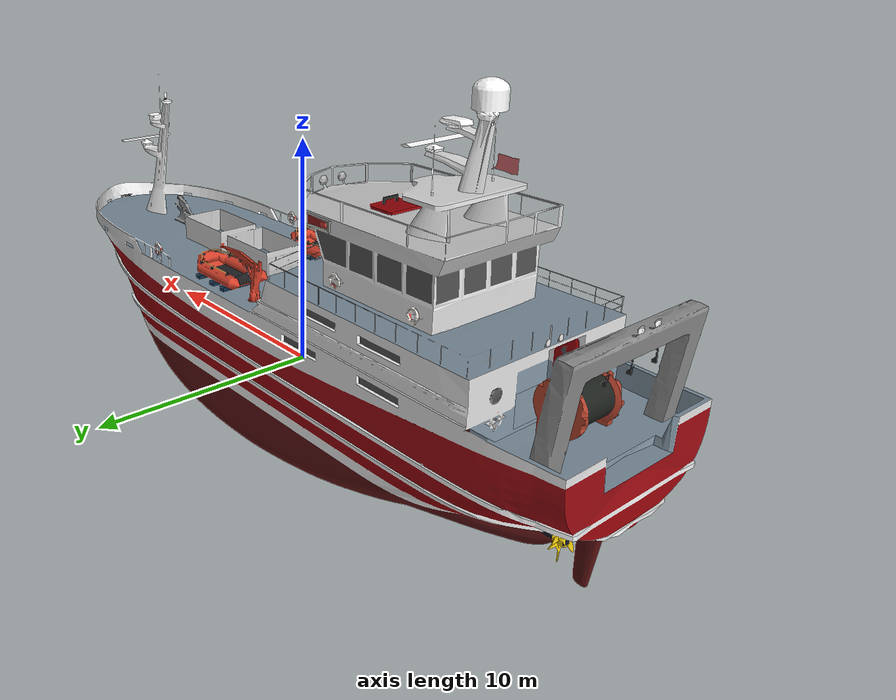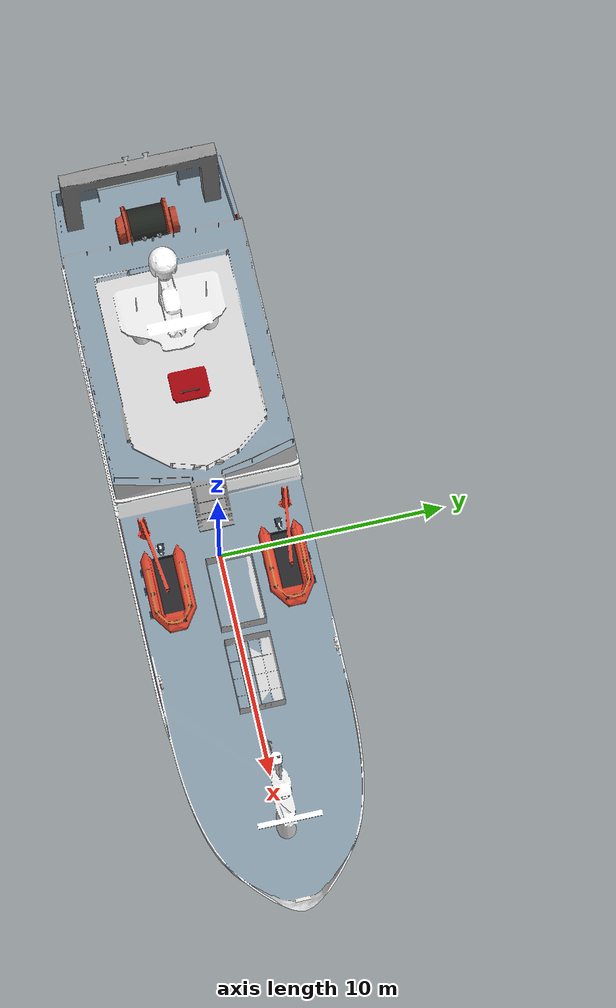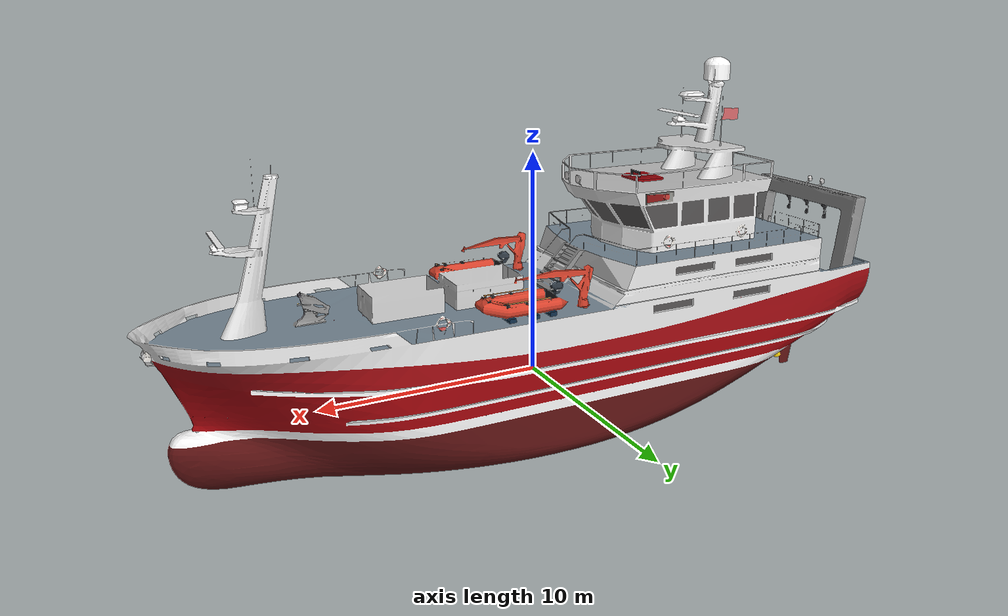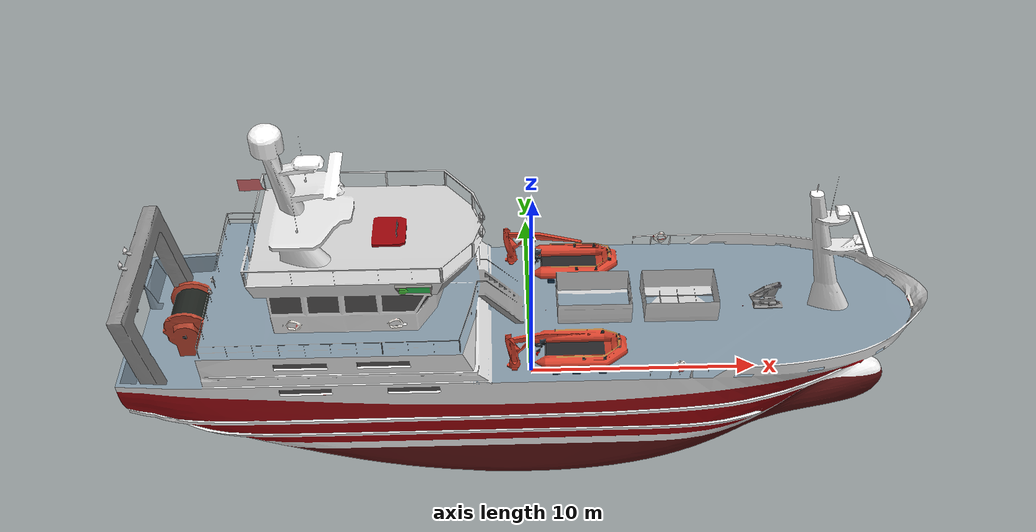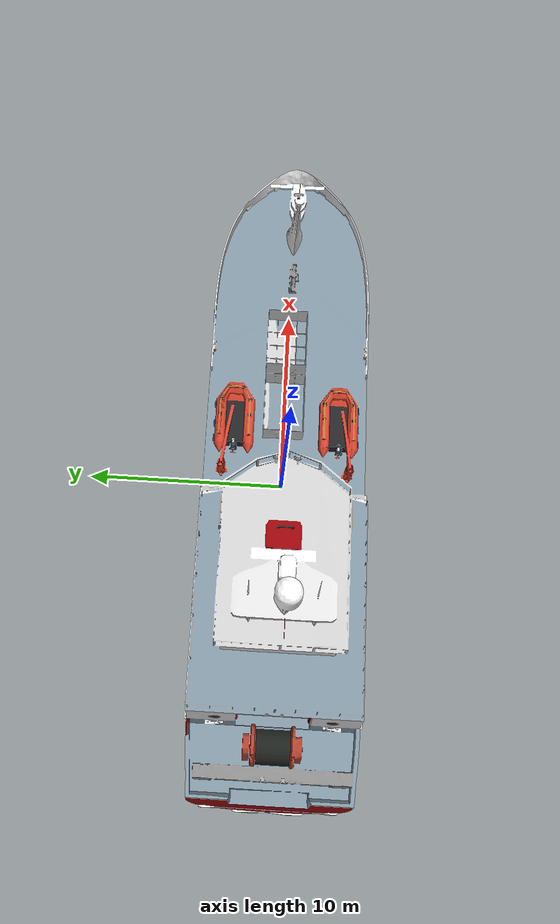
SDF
<?xml version="1.0" ?>
<sdf version="1.6">
  <model name="fishing_vessel">
    <static>true</static>
    <link name="hull">
      <visual name="visual">
        <pose>0 0 -2.6 0 0 0</pose>
        <geometry>
          <mesh><uri>model://fishing_vessel/meshes/fishing_vessel.dae</uri></mesh>
        </geometry>
      </visual>
      <collision name="collision">
        <pose>0 0 -0.6 0 0 0</pose>
        <geometry><box><size>33.6 8.2 5.0</size></box></geometry>
      </collision>
    </link>
  </model>
</sdf>
